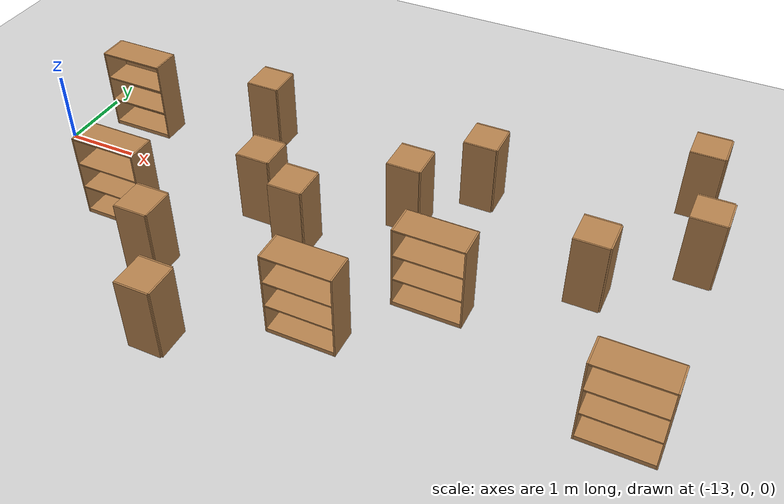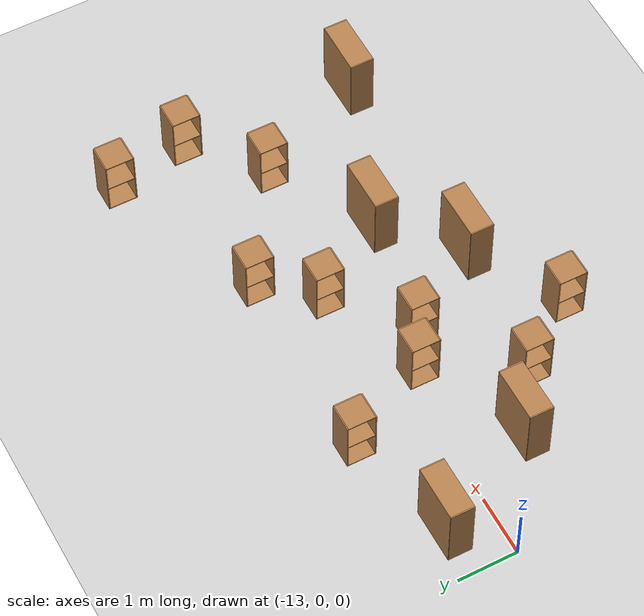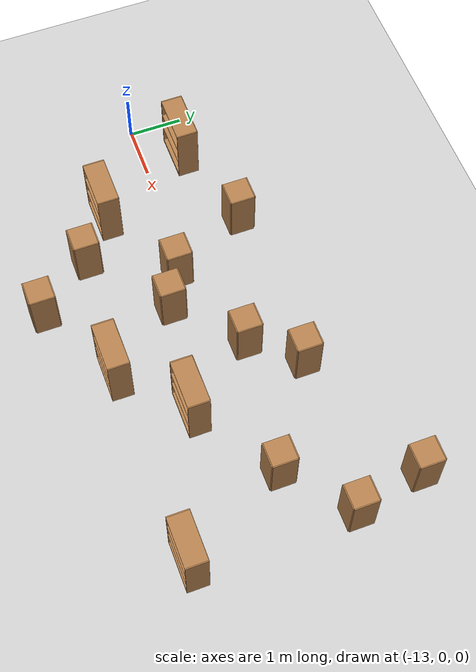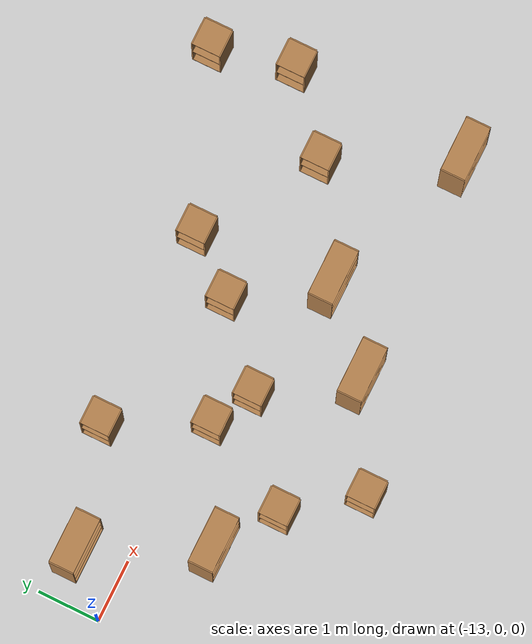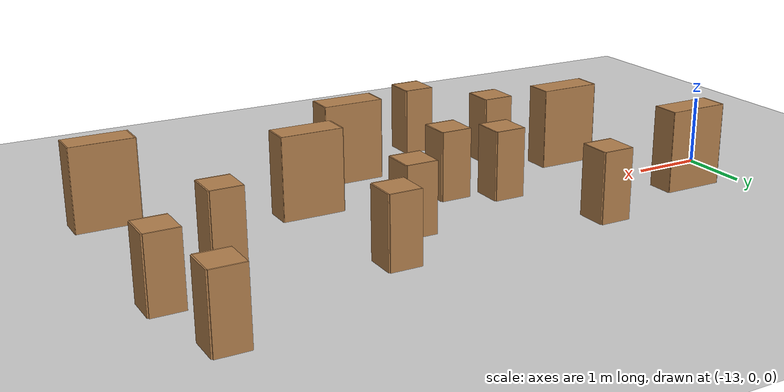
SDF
<sdf version="1.6">
 <world name="default">
  <model name="ground_plane">
   <static>1</static>
   <link name="link">
    <collision name="collision">
     <geometry><plane><normal>0 0 1</normal><size>100 100</size></plane></geometry>
     <surface><friction><ode><mu>100</mu><mu2>50</mu2></ode></friction></surface>
    </collision>
    <visual name="visual">
     <cast_shadows>0</cast_shadows>
     <geometry><plane><normal>0 0 1</normal><size>100 100</size></plane></geometry>
     <material>
      <script><uri>file://media/materials/scripts/gazebo.material</uri><name>Gazebo/Grey</name></script>
     </material>
    </visual>
   </link>
  </model>
  <model name="bookshelf_19">
   <static>1</static>
   <link name="link">
    <inertial><mass>1</mass></inertial>
    <collision name="back">
     <pose>0 0.005 0.6 0 -0 0</pose>
     <geometry><box><size>0.9 0.01 1.2</size></box></geometry>
    </collision>
    <visual name="visual1">
     <pose>0 0.005 0.6 0 -0 0</pose>
     <geometry><box><size>0.9 0.01 1.2</size></box></geometry>
     <material>
      <script><uri>file://media/materials/scripts/gazebo.material</uri><name>Gazebo/Wood</name></script>
     </material>
    </visual>
    <collision name="left_side">
     <pose>0.45 -0.195 0.6 0 -0 0</pose>
     <geometry><box><size>0.02 0.4 1.2</size></box></geometry>
    </collision>
    <visual name="visual2">
     <pose>0.45 -0.195 0.6 0 -0 0</pose>
     <geometry><box><size>0.02 0.4 1.2</size></box></geometry>
     <material>
      <script><uri>file://media/materials/scripts/gazebo.material</uri><name>Gazebo/Wood</name></script>
     </material>
    </visual>
    <collision name="right_side">
     <pose>-0.45 -0.195 0.6 0 -0 0</pose>
     <geometry><box><size>0.02 0.4 1.2</size></box></geometry>
    </collision>
    <visual name="visual3">
     <pose>-0.45 -0.195 0.6 0 -0 0</pose>
     <geometry><box><size>0.02 0.4 1.2</size></box></geometry>
     <material>
      <script><uri>file://media/materials/scripts/gazebo.material</uri><name>Gazebo/Wood</name></script>
     </material>
    </visual>
    <collision name="bottom">
     <pose>0 -0.195 0.03 0 -0 0</pose>
     <geometry><box><size>0.88 0.4 0.06</size></box></geometry>
    </collision>
    <visual name="visual4">
     <pose>0 -0.195 0.03 0 -0 0</pose>
     <geometry><box><size>0.88 0.4 0.06</size></box></geometry>
     <material>
      <script><uri>file://media/materials/scripts/gazebo.material</uri><name>Gazebo/Wood</name></script>
     </material>
    </visual>
    <collision name="top">
     <pose>0 -0.195 1.19 0 -0 0</pose>
     <geometry><box><size>0.88 0.4 0.02</size></box></geometry>
    </collision>
    <visual name="visual5">
     <pose>0 -0.195 1.19 0 -0 0</pose>
     <geometry><box><size>0.88 0.4 0.02</size></box></geometry>
     <material>
      <script><uri>file://media/materials/scripts/gazebo.material</uri><name>Gazebo/Wood</name></script>
     </material>
    </visual>
    <collision name="low_shelf">
     <pose>0 -0.195 0.43 0 -0 0</pose>
     <geometry><box><size>0.88 0.4 0.02</size></box></geometry>
    </collision>
    <visual name="visual6">
     <pose>0 -0.195 0.43 0 -0 0</pose>
     <geometry><box><size>0.88 0.4 0.02</size></box></geometry>
     <material>
      <script><uri>file://media/materials/scripts/gazebo.material</uri><name>Gazebo/Wood</name></script>
     </material>
    </visual>
    <collision name="high_shelf">
     <pose>0 -0.195 0.8 0 -0 0</pose>
     <geometry><box><size>0.88 0.4 0.02</size></box></geometry>
    </collision>
    <visual name="visual7">
     <pose>0 -0.195 0.8 0 -0 0</pose>
     <geometry><box><size>0.88 0.4 0.02</size></box></geometry>
     <material>
      <script><uri>file://media/materials/scripts/gazebo.material</uri><name>Gazebo/Wood</name></script>
     </material>
    </visual>
   </link>
   <pose>-12.18 0.947028 0 0 -0 0</pose>
  </model>
  <model name="bookshelf_20">
   <static>1</static>
   <link name="link">
    <inertial><mass>1</mass></inertial>
    <collision name="back">
     <pose>0 0.005 0.6 0 -0 0</pose>
     <geometry><box><size>0.9 0.01 1.2</size></box></geometry>
    </collision>
    <visual name="visual1">
     <pose>0 0.005 0.6 0 -0 0</pose>
     <geometry><box><size>0.9 0.01 1.2</size></box></geometry>
     <material>
      <script><uri>file://media/materials/scripts/gazebo.material</uri><name>Gazebo/Wood</name></script>
     </material>
    </visual>
    <collision name="left_side">
     <pose>0.45 -0.195 0.6 0 -0 0</pose>
     <geometry><box><size>0.02 0.4 1.2</size></box></geometry>
    </collision>
    <visual name="visual2">
     <pose>0.45 -0.195 0.6 0 -0 0</pose>
     <geometry><box><size>0.02 0.4 1.2</size></box></geometry>
     <material>
      <script><uri>file://media/materials/scripts/gazebo.material</uri><name>Gazebo/Wood</name></script>
     </material>
    </visual>
    <collision name="right_side">
     <pose>-0.45 -0.195 0.6 0 -0 0</pose>
     <geometry><box><size>0.02 0.4 1.2</size></box></geometry>
    </collision>
    <visual name="visual3">
     <pose>-0.45 -0.195 0.6 0 -0 0</pose>
     <geometry><box><size>0.02 0.4 1.2</size></box></geometry>
     <material>
      <script><uri>file://media/materials/scripts/gazebo.material</uri><name>Gazebo/Wood</name></script>
     </material>
    </visual>
    <collision name="bottom">
     <pose>0 -0.195 0.03 0 -0 0</pose>
     <geometry><box><size>0.88 0.4 0.06</size></box></geometry>
    </collision>
    <visual name="visual4">
     <pose>0 -0.195 0.03 0 -0 0</pose>
     <geometry><box><size>0.88 0.4 0.06</size></box></geometry>
     <material>
      <script><uri>file://media/materials/scripts/gazebo.material</uri><name>Gazebo/Wood</name></script>
     </material>
    </visual>
    <collision name="top">
     <pose>0 -0.195 1.19 0 -0 0</pose>
     <geometry><box><size>0.88 0.4 0.02</size></box></geometry>
    </collision>
    <visual name="visual5">
     <pose>0 -0.195 1.19 0 -0 0</pose>
     <geometry><box><size>0.88 0.4 0.02</size></box></geometry>
     <material>
      <script><uri>file://media/materials/scripts/gazebo.material</uri><name>Gazebo/Wood</name></script>
     </material>
    </visual>
    <collision name="low_shelf">
     <pose>0 -0.195 0.43 0 -0 0</pose>
     <geometry><box><size>0.88 0.4 0.02</size></box></geometry>
    </collision>
    <visual name="visual6">
     <pose>0 -0.195 0.43 0 -0 0</pose>
     <geometry><box><size>0.88 0.4 0.02</size></box></geometry>
     <material>
      <script><uri>file://media/materials/scripts/gazebo.material</uri><name>Gazebo/Wood</name></script>
     </material>
    </visual>
    <collision name="high_shelf">
     <pose>0 -0.195 0.8 0 -0 0</pose>
     <geometry><box><size>0.88 0.4 0.02</size></box></geometry>
    </collision>
    <visual name="visual7">
     <pose>0 -0.195 0.8 0 -0 0</pose>
     <geometry><box><size>0.88 0.4 0.02</size></box></geometry>
     <material>
      <script><uri>file://media/materials/scripts/gazebo.material</uri><name>Gazebo/Wood</name></script>
     </material>
    </visual>
   </link>
   <pose>-11.2678 -0.884884 0 0 -0 0</pose>
  </model>
  <model name="cabinet_9">
   <static>1</static>
   <link name="cabinet_bottom_plate">
    <inertial>
     <pose>0 0 -1 0 -0 0</pose>
     <inertia><ixx>2.05</ixx><ixy>0</ixy><ixz>0</ixz><iyy>2.05</iyy><iyz>0</iyz><izz>2.05</izz></inertia>
     <mass>25</mass>
    </inertial>
    <collision name="cabinet_bottom_plate_geom">
     <pose>0 0 0.01 0 -0 0</pose>
     <geometry><box><size>0.45 0.45 0.02</size></box></geometry>
    </collision>
    <visual name="cabinet_bottom_plate_geom_visual">
     <pose>0 0 0.01 0 -0 0</pose>
     <geometry><box><size>0.45 0.45 0.02</size></box></geometry>
     <material>
      <script><uri>file://media/materials/scripts/gazebo.material</uri><name>Gazebo/Wood</name></script>
     </material>
    </visual>
    <collision name="cabinet_bottom_plate_geom_cabinet_back_plate">
     <pose>0.235 0 0.51 0 -0 0</pose>
     <geometry><box><size>0.02 0.45 1.02</size></box></geometry>
    </collision>
    <visual name="cabinet_bottom_plate_geom_cabinet_back_plate_visual">
     <pose>0.235 0 0.51 0 -0 0</pose>
     <geometry><box><size>0.02 0.45 1.02</size></box></geometry>
     <material>
      <script><uri>file://media/materials/scripts/gazebo.material</uri><name>Gazebo/Wood</name></script>
     </material>
    </visual>
    <collision name="cabinet_bottom_plate_geom_cabinet_left_plate">
     <pose>0 0.235 0.51 0 -0 0</pose>
     <geometry><box><size>0.45 0.02 1.02</size></box></geometry>
    </collision>
    <visual name="cabinet_bottom_plate_geom_cabinet_left_plate_visual">
     <pose>0 0.235 0.51 0 -0 0</pose>
     <geometry><box><size>0.45 0.02 1.02</size></box></geometry>
     <material>
      <script><uri>file://media/materials/scripts/gazebo.material</uri><name>Gazebo/Wood</name></script>
     </material>
    </visual>
    <collision name="cabinet_bottom_plate_geom_cabinet_middle_plate">
     <pose>0 0 0.51 0 -0 0</pose>
     <geometry><box><size>0.45 0.45 0.02</size></box></geometry>
    </collision>
    <visual name="cabinet_bottom_plate_geom_cabinet_middle_plate_visual">
     <pose>0 0 0.51 0 -0 0</pose>
     <geometry><box><size>0.45 0.45 0.02</size></box></geometry>
     <material>
      <script><uri>file://media/materials/scripts/gazebo.material</uri><name>Gazebo/Wood</name></script>
     </material>
    </visual>
    <collision name="cabinet_bottom_plate_geom_cabinet_right_plate">
     <pose>0 -0.235 0.51 0 -0 0</pose>
     <geometry><box><size>0.45 0.02 1.02</size></box></geometry>
    </collision>
    <visual name="cabinet_bottom_plate_geom_cabinet_right_plate_visual">
     <pose>0 -0.235 0.51 0 -0 0</pose>
     <geometry><box><size>0.45 0.02 1.02</size></box></geometry>
     <material>
      <script><uri>file://media/materials/scripts/gazebo.material</uri><name>Gazebo/Wood</name></script>
     </material>
    </visual>
    <collision name="cabinet_bottom_plate_geom_cabinet_top_plate">
     <pose>0 0 1.01 0 -0 0</pose>
     <geometry><box><size>0.45 0.45 0.02</size></box></geometry>
    </collision>
    <visual name="cabinet_bottom_plate_geom_cabinet_top_plate_visual">
     <pose>0 0 1.01 0 -0 0</pose>
     <geometry><box><size>0.45 0.45 0.02</size></box></geometry>
     <material>
      <script><uri>file://media/materials/scripts/gazebo.material</uri><name>Gazebo/Wood</name></script>
     </material>
    </visual>
   </link>
   <pose>-9.57575 -2.77074 0 0 -0 0</pose>
  </model>
  <model name="cabinet_10">
   <static>1</static>
   <link name="cabinet_bottom_plate">
    <inertial>
     <pose>0 0 -1 0 -0 0</pose>
     <inertia><ixx>2.05</ixx><ixy>0</ixy><ixz>0</ixz><iyy>2.05</iyy><iyz>0</iyz><izz>2.05</izz></inertia>
     <mass>25</mass>
    </inertial>
    <collision name="cabinet_bottom_plate_geom">
     <pose>0 0 0.01 0 -0 0</pose>
     <geometry><box><size>0.45 0.45 0.02</size></box></geometry>
    </collision>
    <visual name="cabinet_bottom_plate_geom_visual">
     <pose>0 0 0.01 0 -0 0</pose>
     <geometry><box><size>0.45 0.45 0.02</size></box></geometry>
     <material>
      <script><uri>file://media/materials/scripts/gazebo.material</uri><name>Gazebo/Wood</name></script>
     </material>
    </visual>
    <collision name="cabinet_bottom_plate_geom_cabinet_back_plate">
     <pose>0.235 0 0.51 0 -0 0</pose>
     <geometry><box><size>0.02 0.45 1.02</size></box></geometry>
    </collision>
    <visual name="cabinet_bottom_plate_geom_cabinet_back_plate_visual">
     <pose>0.235 0 0.51 0 -0 0</pose>
     <geometry><box><size>0.02 0.45 1.02</size></box></geometry>
     <material>
      <script><uri>file://media/materials/scripts/gazebo.material</uri><name>Gazebo/Wood</name></script>
     </material>
    </visual>
    <collision name="cabinet_bottom_plate_geom_cabinet_left_plate">
     <pose>0 0.235 0.51 0 -0 0</pose>
     <geometry><box><size>0.45 0.02 1.02</size></box></geometry>
    </collision>
    <visual name="cabinet_bottom_plate_geom_cabinet_left_plate_visual">
     <pose>0 0.235 0.51 0 -0 0</pose>
     <geometry><box><size>0.45 0.02 1.02</size></box></geometry>
     <material>
      <script><uri>file://media/materials/scripts/gazebo.material</uri><name>Gazebo/Wood</name></script>
     </material>
    </visual>
    <collision name="cabinet_bottom_plate_geom_cabinet_middle_plate">
     <pose>0 0 0.51 0 -0 0</pose>
     <geometry><box><size>0.45 0.45 0.02</size></box></geometry>
    </collision>
    <visual name="cabinet_bottom_plate_geom_cabinet_middle_plate_visual">
     <pose>0 0 0.51 0 -0 0</pose>
     <geometry><box><size>0.45 0.45 0.02</size></box></geometry>
     <material>
      <script><uri>file://media/materials/scripts/gazebo.material</uri><name>Gazebo/Wood</name></script>
     </material>
    </visual>
    <collision name="cabinet_bottom_plate_geom_cabinet_right_plate">
     <pose>0 -0.235 0.51 0 -0 0</pose>
     <geometry><box><size>0.45 0.02 1.02</size></box></geometry>
    </collision>
    <visual name="cabinet_bottom_plate_geom_cabinet_right_plate_visual">
     <pose>0 -0.235 0.51 0 -0 0</pose>
     <geometry><box><size>0.45 0.02 1.02</size></box></geometry>
     <material>
      <script><uri>file://media/materials/scripts/gazebo.material</uri><name>Gazebo/Wood</name></script>
     </material>
    </visual>
    <collision name="cabinet_bottom_plate_geom_cabinet_top_plate">
     <pose>0 0 1.01 0 -0 0</pose>
     <geometry><box><size>0.45 0.45 0.02</size></box></geometry>
    </collision>
    <visual name="cabinet_bottom_plate_geom_cabinet_top_plate_visual">
     <pose>0 0 1.01 0 -0 0</pose>
     <geometry><box><size>0.45 0.45 0.02</size></box></geometry>
     <material>
      <script><uri>file://media/materials/scripts/gazebo.material</uri><name>Gazebo/Wood</name></script>
     </material>
    </visual>
   </link>
   <pose>-10.3756 -1.71932 0 0 -0 0</pose>
  </model>
  <model name="cabinet_11">
   <static>1</static>
   <link name="cabinet_bottom_plate">
    <inertial>
     <pose>0 0 -1 0 -0 0</pose>
     <inertia><ixx>2.05</ixx><ixy>0</ixy><ixz>0</ixz><iyy>2.05</iyy><iyz>0</iyz><izz>2.05</izz></inertia>
     <mass>25</mass>
    </inertial>
    <collision name="cabinet_bottom_plate_geom">
     <pose>0 0 0.01 0 -0 0</pose>
     <geometry><box><size>0.45 0.45 0.02</size></box></geometry>
    </collision>
    <visual name="cabinet_bottom_plate_geom_visual">
     <pose>0 0 0.01 0 -0 0</pose>
     <geometry><box><size>0.45 0.45 0.02</size></box></geometry>
     <material>
      <script><uri>file://media/materials/scripts/gazebo.material</uri><name>Gazebo/Wood</name></script>
     </material>
    </visual>
    <collision name="cabinet_bottom_plate_geom_cabinet_back_plate">
     <pose>0.235 0 0.51 0 -0 0</pose>
     <geometry><box><size>0.02 0.45 1.02</size></box></geometry>
    </collision>
    <visual name="cabinet_bottom_plate_geom_cabinet_back_plate_visual">
     <pose>0.235 0 0.51 0 -0 0</pose>
     <geometry><box><size>0.02 0.45 1.02</size></box></geometry>
     <material>
      <script><uri>file://media/materials/scripts/gazebo.material</uri><name>Gazebo/Wood</name></script>
     </material>
    </visual>
    <collision name="cabinet_bottom_plate_geom_cabinet_left_plate">
     <pose>0 0.235 0.51 0 -0 0</pose>
     <geometry><box><size>0.45 0.02 1.02</size></box></geometry>
    </collision>
    <visual name="cabinet_bottom_plate_geom_cabinet_left_plate_visual">
     <pose>0 0.235 0.51 0 -0 0</pose>
     <geometry><box><size>0.45 0.02 1.02</size></box></geometry>
     <material>
      <script><uri>file://media/materials/scripts/gazebo.material</uri><name>Gazebo/Wood</name></script>
     </material>
    </visual>
    <collision name="cabinet_bottom_plate_geom_cabinet_middle_plate">
     <pose>0 0 0.51 0 -0 0</pose>
     <geometry><box><size>0.45 0.45 0.02</size></box></geometry>
    </collision>
    <visual name="cabinet_bottom_plate_geom_cabinet_middle_plate_visual">
     <pose>0 0 0.51 0 -0 0</pose>
     <geometry><box><size>0.45 0.45 0.02</size></box></geometry>
     <material>
      <script><uri>file://media/materials/scripts/gazebo.material</uri><name>Gazebo/Wood</name></script>
     </material>
    </visual>
    <collision name="cabinet_bottom_plate_geom_cabinet_right_plate">
     <pose>0 -0.235 0.51 0 -0 0</pose>
     <geometry><box><size>0.45 0.02 1.02</size></box></geometry>
    </collision>
    <visual name="cabinet_bottom_plate_geom_cabinet_right_plate_visual">
     <pose>0 -0.235 0.51 0 -0 0</pose>
     <geometry><box><size>0.45 0.02 1.02</size></box></geometry>
     <material>
      <script><uri>file://media/materials/scripts/gazebo.material</uri><name>Gazebo/Wood</name></script>
     </material>
    </visual>
    <collision name="cabinet_bottom_plate_geom_cabinet_top_plate">
     <pose>0 0 1.01 0 -0 0</pose>
     <geometry><box><size>0.45 0.45 0.02</size></box></geometry>
    </collision>
    <visual name="cabinet_bottom_plate_geom_cabinet_top_plate_visual">
     <pose>0 0 1.01 0 -0 0</pose>
     <geometry><box><size>0.45 0.45 0.02</size></box></geometry>
     <material>
      <script><uri>file://media/materials/scripts/gazebo.material</uri><name>Gazebo/Wood</name></script>
     </material>
    </visual>
   </link>
   <pose>-9.60301 -0.227006 0 0 -0 0</pose>
  </model>
  <model name="cabinet_12">
   <static>1</static>
   <link name="cabinet_bottom_plate">
    <inertial>
     <pose>0 0 -1 0 -0 0</pose>
     <inertia><ixx>2.05</ixx><ixy>0</ixy><ixz>0</ixz><iyy>2.05</iyy><iyz>0</iyz><izz>2.05</izz></inertia>
     <mass>25</mass>
    </inertial>
    <collision name="cabinet_bottom_plate_geom">
     <pose>0 0 0.01 0 -0 0</pose>
     <geometry><box><size>0.45 0.45 0.02</size></box></geometry>
    </collision>
    <visual name="cabinet_bottom_plate_geom_visual">
     <pose>0 0 0.01 0 -0 0</pose>
     <geometry><box><size>0.45 0.45 0.02</size></box></geometry>
     <material>
      <script><uri>file://media/materials/scripts/gazebo.material</uri><name>Gazebo/Wood</name></script>
     </material>
    </visual>
    <collision name="cabinet_bottom_plate_geom_cabinet_back_plate">
     <pose>0.235 0 0.51 0 -0 0</pose>
     <geometry><box><size>0.02 0.45 1.02</size></box></geometry>
    </collision>
    <visual name="cabinet_bottom_plate_geom_cabinet_back_plate_visual">
     <pose>0.235 0 0.51 0 -0 0</pose>
     <geometry><box><size>0.02 0.45 1.02</size></box></geometry>
     <material>
      <script><uri>file://media/materials/scripts/gazebo.material</uri><name>Gazebo/Wood</name></script>
     </material>
    </visual>
    <collision name="cabinet_bottom_plate_geom_cabinet_left_plate">
     <pose>0 0.235 0.51 0 -0 0</pose>
     <geometry><box><size>0.45 0.02 1.02</size></box></geometry>
    </collision>
    <visual name="cabinet_bottom_plate_geom_cabinet_left_plate_visual">
     <pose>0 0.235 0.51 0 -0 0</pose>
     <geometry><box><size>0.45 0.02 1.02</size></box></geometry>
     <material>
      <script><uri>file://media/materials/scripts/gazebo.material</uri><name>Gazebo/Wood</name></script>
     </material>
    </visual>
    <collision name="cabinet_bottom_plate_geom_cabinet_middle_plate">
     <pose>0 0 0.51 0 -0 0</pose>
     <geometry><box><size>0.45 0.45 0.02</size></box></geometry>
    </collision>
    <visual name="cabinet_bottom_plate_geom_cabinet_middle_plate_visual">
     <pose>0 0 0.51 0 -0 0</pose>
     <geometry><box><size>0.45 0.45 0.02</size></box></geometry>
     <material>
      <script><uri>file://media/materials/scripts/gazebo.material</uri><name>Gazebo/Wood</name></script>
     </material>
    </visual>
    <collision name="cabinet_bottom_plate_geom_cabinet_right_plate">
     <pose>0 -0.235 0.51 0 -0 0</pose>
     <geometry><box><size>0.45 0.02 1.02</size></box></geometry>
    </collision>
    <visual name="cabinet_bottom_plate_geom_cabinet_right_plate_visual">
     <pose>0 -0.235 0.51 0 -0 0</pose>
     <geometry><box><size>0.45 0.02 1.02</size></box></geometry>
     <material>
      <script><uri>file://media/materials/scripts/gazebo.material</uri><name>Gazebo/Wood</name></script>
     </material>
    </visual>
    <collision name="cabinet_bottom_plate_geom_cabinet_top_plate">
     <pose>0 0 1.01 0 -0 0</pose>
     <geometry><box><size>0.45 0.45 0.02</size></box></geometry>
    </collision>
    <visual name="cabinet_bottom_plate_geom_cabinet_top_plate_visual">
     <pose>0 0 1.01 0 -0 0</pose>
     <geometry><box><size>0.45 0.45 0.02</size></box></geometry>
     <material>
      <script><uri>file://media/materials/scripts/gazebo.material</uri><name>Gazebo/Wood</name></script>
     </material>
    </visual>
   </link>
   <pose>-10.3341 1.24901 0 0 -0 0</pose>
  </model>
  <model name="bookshelf_24">
   <static>1</static>
   <link name="link">
    <inertial><mass>1</mass></inertial>
    <collision name="back">
     <pose>0 0.005 0.6 0 -0 0</pose>
     <geometry><box><size>0.9 0.01 1.2</size></box></geometry>
    </collision>
    <visual name="visual1">
     <pose>0 0.005 0.6 0 -0 0</pose>
     <geometry><box><size>0.9 0.01 1.2</size></box></geometry>
     <material>
      <script><uri>file://media/materials/scripts/gazebo.material</uri><name>Gazebo/Wood</name></script>
     </material>
    </visual>
    <collision name="left_side">
     <pose>0.45 -0.195 0.6 0 -0 0</pose>
     <geometry><box><size>0.02 0.4 1.2</size></box></geometry>
    </collision>
    <visual name="visual2">
     <pose>0.45 -0.195 0.6 0 -0 0</pose>
     <geometry><box><size>0.02 0.4 1.2</size></box></geometry>
     <material>
      <script><uri>file://media/materials/scripts/gazebo.material</uri><name>Gazebo/Wood</name></script>
     </material>
    </visual>
    <collision name="right_side">
     <pose>-0.45 -0.195 0.6 0 -0 0</pose>
     <geometry><box><size>0.02 0.4 1.2</size></box></geometry>
    </collision>
    <visual name="visual3">
     <pose>-0.45 -0.195 0.6 0 -0 0</pose>
     <geometry><box><size>0.02 0.4 1.2</size></box></geometry>
     <material>
      <script><uri>file://media/materials/scripts/gazebo.material</uri><name>Gazebo/Wood</name></script>
     </material>
    </visual>
    <collision name="bottom">
     <pose>0 -0.195 0.03 0 -0 0</pose>
     <geometry><box><size>0.88 0.4 0.06</size></box></geometry>
    </collision>
    <visual name="visual4">
     <pose>0 -0.195 0.03 0 -0 0</pose>
     <geometry><box><size>0.88 0.4 0.06</size></box></geometry>
     <material>
      <script><uri>file://media/materials/scripts/gazebo.material</uri><name>Gazebo/Wood</name></script>
     </material>
    </visual>
    <collision name="top">
     <pose>0 -0.195 1.19 0 -0 0</pose>
     <geometry><box><size>0.88 0.4 0.02</size></box></geometry>
    </collision>
    <visual name="visual5">
     <pose>0 -0.195 1.19 0 -0 0</pose>
     <geometry><box><size>0.88 0.4 0.02</size></box></geometry>
     <material>
      <script><uri>file://media/materials/scripts/gazebo.material</uri><name>Gazebo/Wood</name></script>
     </material>
    </visual>
    <collision name="low_shelf">
     <pose>0 -0.195 0.43 0 -0 0</pose>
     <geometry><box><size>0.88 0.4 0.02</size></box></geometry>
    </collision>
    <visual name="visual6">
     <pose>0 -0.195 0.43 0 -0 0</pose>
     <geometry><box><size>0.88 0.4 0.02</size></box></geometry>
     <material>
      <script><uri>file://media/materials/scripts/gazebo.material</uri><name>Gazebo/Wood</name></script>
     </material>
    </visual>
    <collision name="high_shelf">
     <pose>0 -0.195 0.8 0 -0 0</pose>
     <geometry><box><size>0.88 0.4 0.02</size></box></geometry>
    </collision>
    <visual name="visual7">
     <pose>0 -0.195 0.8 0 -0 0</pose>
     <geometry><box><size>0.88 0.4 0.02</size></box></geometry>
     <material>
      <script><uri>file://media/materials/scripts/gazebo.material</uri><name>Gazebo/Wood</name></script>
     </material>
    </visual>
   </link>
   <pose>-8.02454 -1.74312 0 0 -0 0</pose>
  </model>
  <model name="cabinet_17">
   <static>1</static>
   <link name="cabinet_bottom_plate">
    <inertial>
     <pose>0 0 -1 0 -0 0</pose>
     <inertia><ixx>2.05</ixx><ixy>0</ixy><ixz>0</ixz><iyy>2.05</iyy><iyz>0</iyz><izz>2.05</izz></inertia>
     <mass>25</mass>
    </inertial>
    <collision name="cabinet_bottom_plate_geom">
     <pose>0 0 0.01 0 -0 0</pose>
     <geometry><box><size>0.45 0.45 0.02</size></box></geometry>
    </collision>
    <visual name="cabinet_bottom_plate_geom_visual">
     <pose>0 0 0.01 0 -0 0</pose>
     <geometry><box><size>0.45 0.45 0.02</size></box></geometry>
     <material>
      <script><uri>file://media/materials/scripts/gazebo.material</uri><name>Gazebo/Wood</name></script>
     </material>
    </visual>
    <collision name="cabinet_bottom_plate_geom_cabinet_back_plate">
     <pose>0.235 0 0.51 0 -0 0</pose>
     <geometry><box><size>0.02 0.45 1.02</size></box></geometry>
    </collision>
    <visual name="cabinet_bottom_plate_geom_cabinet_back_plate_visual">
     <pose>0.235 0 0.51 0 -0 0</pose>
     <geometry><box><size>0.02 0.45 1.02</size></box></geometry>
     <material>
      <script><uri>file://media/materials/scripts/gazebo.material</uri><name>Gazebo/Wood</name></script>
     </material>
    </visual>
    <collision name="cabinet_bottom_plate_geom_cabinet_left_plate">
     <pose>0 0.235 0.51 0 -0 0</pose>
     <geometry><box><size>0.45 0.02 1.02</size></box></geometry>
    </collision>
    <visual name="cabinet_bottom_plate_geom_cabinet_left_plate_visual">
     <pose>0 0.235 0.51 0 -0 0</pose>
     <geometry><box><size>0.45 0.02 1.02</size></box></geometry>
     <material>
      <script><uri>file://media/materials/scripts/gazebo.material</uri><name>Gazebo/Wood</name></script>
     </material>
    </visual>
    <collision name="cabinet_bottom_plate_geom_cabinet_middle_plate">
     <pose>0 0 0.51 0 -0 0</pose>
     <geometry><box><size>0.45 0.45 0.02</size></box></geometry>
    </collision>
    <visual name="cabinet_bottom_plate_geom_cabinet_middle_plate_visual">
     <pose>0 0 0.51 0 -0 0</pose>
     <geometry><box><size>0.45 0.45 0.02</size></box></geometry>
     <material>
      <script><uri>file://media/materials/scripts/gazebo.material</uri><name>Gazebo/Wood</name></script>
     </material>
    </visual>
    <collision name="cabinet_bottom_plate_geom_cabinet_right_plate">
     <pose>0 -0.235 0.51 0 -0 0</pose>
     <geometry><box><size>0.45 0.02 1.02</size></box></geometry>
    </collision>
    <visual name="cabinet_bottom_plate_geom_cabinet_right_plate_visual">
     <pose>0 -0.235 0.51 0 -0 0</pose>
     <geometry><box><size>0.45 0.02 1.02</size></box></geometry>
     <material>
      <script><uri>file://media/materials/scripts/gazebo.material</uri><name>Gazebo/Wood</name></script>
     </material>
    </visual>
    <collision name="cabinet_bottom_plate_geom_cabinet_top_plate">
     <pose>0 0 1.01 0 -0 0</pose>
     <geometry><box><size>0.45 0.45 0.02</size></box></geometry>
    </collision>
    <visual name="cabinet_bottom_plate_geom_cabinet_top_plate_visual">
     <pose>0 0 1.01 0 -0 0</pose>
     <geometry><box><size>0.45 0.45 0.02</size></box></geometry>
     <material>
      <script><uri>file://media/materials/scripts/gazebo.material</uri><name>Gazebo/Wood</name></script>
     </material>
    </visual>
   </link>
   <pose>-8.93436 -0.583523 0 0 -0 0</pose>
  </model>
  <model name="cabinet_18">
   <static>1</static>
   <link name="cabinet_bottom_plate">
    <inertial>
     <pose>0 0 -1 0 -0 0</pose>
     <inertia><ixx>2.05</ixx><ixy>0</ixy><ixz>0</ixz><iyy>2.05</iyy><iyz>0</iyz><izz>2.05</izz></inertia>
     <mass>25</mass>
    </inertial>
    <collision name="cabinet_bottom_plate_geom">
     <pose>0 0 0.01 0 -0 0</pose>
     <geometry><box><size>0.45 0.45 0.02</size></box></geometry>
    </collision>
    <visual name="cabinet_bottom_plate_geom_visual">
     <pose>0 0 0.01 0 -0 0</pose>
     <geometry><box><size>0.45 0.45 0.02</size></box></geometry>
     <material>
      <script><uri>file://media/materials/scripts/gazebo.material</uri><name>Gazebo/Wood</name></script>
     </material>
    </visual>
    <collision name="cabinet_bottom_plate_geom_cabinet_back_plate">
     <pose>0.235 0 0.51 0 -0 0</pose>
     <geometry><box><size>0.02 0.45 1.02</size></box></geometry>
    </collision>
    <visual name="cabinet_bottom_plate_geom_cabinet_back_plate_visual">
     <pose>0.235 0 0.51 0 -0 0</pose>
     <geometry><box><size>0.02 0.45 1.02</size></box></geometry>
     <material>
      <script><uri>file://media/materials/scripts/gazebo.material</uri><name>Gazebo/Wood</name></script>
     </material>
    </visual>
    <collision name="cabinet_bottom_plate_geom_cabinet_left_plate">
     <pose>0 0.235 0.51 0 -0 0</pose>
     <geometry><box><size>0.45 0.02 1.02</size></box></geometry>
    </collision>
    <visual name="cabinet_bottom_plate_geom_cabinet_left_plate_visual">
     <pose>0 0.235 0.51 0 -0 0</pose>
     <geometry><box><size>0.45 0.02 1.02</size></box></geometry>
     <material>
      <script><uri>file://media/materials/scripts/gazebo.material</uri><name>Gazebo/Wood</name></script>
     </material>
    </visual>
    <collision name="cabinet_bottom_plate_geom_cabinet_middle_plate">
     <pose>0 0 0.51 0 -0 0</pose>
     <geometry><box><size>0.45 0.45 0.02</size></box></geometry>
    </collision>
    <visual name="cabinet_bottom_plate_geom_cabinet_middle_plate_visual">
     <pose>0 0 0.51 0 -0 0</pose>
     <geometry><box><size>0.45 0.45 0.02</size></box></geometry>
     <material>
      <script><uri>file://media/materials/scripts/gazebo.material</uri><name>Gazebo/Wood</name></script>
     </material>
    </visual>
    <collision name="cabinet_bottom_plate_geom_cabinet_right_plate">
     <pose>0 -0.235 0.51 0 -0 0</pose>
     <geometry><box><size>0.45 0.02 1.02</size></box></geometry>
    </collision>
    <visual name="cabinet_bottom_plate_geom_cabinet_right_plate_visual">
     <pose>0 -0.235 0.51 0 -0 0</pose>
     <geometry><box><size>0.45 0.02 1.02</size></box></geometry>
     <material>
      <script><uri>file://media/materials/scripts/gazebo.material</uri><name>Gazebo/Wood</name></script>
     </material>
    </visual>
    <collision name="cabinet_bottom_plate_geom_cabinet_top_plate">
     <pose>0 0 1.01 0 -0 0</pose>
     <geometry><box><size>0.45 0.45 0.02</size></box></geometry>
    </collision>
    <visual name="cabinet_bottom_plate_geom_cabinet_top_plate_visual">
     <pose>0 0 1.01 0 -0 0</pose>
     <geometry><box><size>0.45 0.45 0.02</size></box></geometry>
     <material>
      <script><uri>file://media/materials/scripts/gazebo.material</uri><name>Gazebo/Wood</name></script>
     </material>
    </visual>
   </link>
   <pose>-7.80378 0.422882 0 0 -0 0</pose>
  </model>
  <model name="bookshelf_28">
   <static>1</static>
   <link name="link">
    <inertial><mass>1</mass></inertial>
    <collision name="back">
     <pose>0 0.005 0.6 0 -0 0</pose>
     <geometry><box><size>0.9 0.01 1.2</size></box></geometry>
    </collision>
    <visual name="visual1">
     <pose>0 0.005 0.6 0 -0 0</pose>
     <geometry><box><size>0.9 0.01 1.2</size></box></geometry>
     <material>
      <script><uri>file://media/materials/scripts/gazebo.material</uri><name>Gazebo/Wood</name></script>
     </material>
    </visual>
    <collision name="left_side">
     <pose>0.45 -0.195 0.6 0 -0 0</pose>
     <geometry><box><size>0.02 0.4 1.2</size></box></geometry>
    </collision>
    <visual name="visual2">
     <pose>0.45 -0.195 0.6 0 -0 0</pose>
     <geometry><box><size>0.02 0.4 1.2</size></box></geometry>
     <material>
      <script><uri>file://media/materials/scripts/gazebo.material</uri><name>Gazebo/Wood</name></script>
     </material>
    </visual>
    <collision name="right_side">
     <pose>-0.45 -0.195 0.6 0 -0 0</pose>
     <geometry><box><size>0.02 0.4 1.2</size></box></geometry>
    </collision>
    <visual name="visual3">
     <pose>-0.45 -0.195 0.6 0 -0 0</pose>
     <geometry><box><size>0.02 0.4 1.2</size></box></geometry>
     <material>
      <script><uri>file://media/materials/scripts/gazebo.material</uri><name>Gazebo/Wood</name></script>
     </material>
    </visual>
    <collision name="bottom">
     <pose>0 -0.195 0.03 0 -0 0</pose>
     <geometry><box><size>0.88 0.4 0.06</size></box></geometry>
    </collision>
    <visual name="visual4">
     <pose>0 -0.195 0.03 0 -0 0</pose>
     <geometry><box><size>0.88 0.4 0.06</size></box></geometry>
     <material>
      <script><uri>file://media/materials/scripts/gazebo.material</uri><name>Gazebo/Wood</name></script>
     </material>
    </visual>
    <collision name="top">
     <pose>0 -0.195 1.19 0 -0 0</pose>
     <geometry><box><size>0.88 0.4 0.02</size></box></geometry>
    </collision>
    <visual name="visual5">
     <pose>0 -0.195 1.19 0 -0 0</pose>
     <geometry><box><size>0.88 0.4 0.02</size></box></geometry>
     <material>
      <script><uri>file://media/materials/scripts/gazebo.material</uri><name>Gazebo/Wood</name></script>
     </material>
    </visual>
    <collision name="low_shelf">
     <pose>0 -0.195 0.43 0 -0 0</pose>
     <geometry><box><size>0.88 0.4 0.02</size></box></geometry>
    </collision>
    <visual name="visual6">
     <pose>0 -0.195 0.43 0 -0 0</pose>
     <geometry><box><size>0.88 0.4 0.02</size></box></geometry>
     <material>
      <script><uri>file://media/materials/scripts/gazebo.material</uri><name>Gazebo/Wood</name></script>
     </material>
    </visual>
    <collision name="high_shelf">
     <pose>0 -0.195 0.8 0 -0 0</pose>
     <geometry><box><size>0.88 0.4 0.02</size></box></geometry>
    </collision>
    <visual name="visual7">
     <pose>0 -0.195 0.8 0 -0 0</pose>
     <geometry><box><size>0.88 0.4 0.02</size></box></geometry>
     <material>
      <script><uri>file://media/materials/scripts/gazebo.material</uri><name>Gazebo/Wood</name></script>
     </material>
    </visual>
   </link>
   <pose>-6.89441 -0.716947 0 0 -0 0</pose>
  </model>
  <model name="cabinet_21">
   <static>1</static>
   <link name="cabinet_bottom_plate">
    <inertial>
     <pose>0 0 -1 0 -0 0</pose>
     <inertia><ixx>2.05</ixx><ixy>0</ixy><ixz>0</ixz><iyy>2.05</iyy><iyz>0</iyz><izz>2.05</izz></inertia>
     <mass>25</mass>
    </inertial>
    <collision name="cabinet_bottom_plate_geom">
     <pose>0 0 0.01 0 -0 0</pose>
     <geometry><box><size>0.45 0.45 0.02</size></box></geometry>
    </collision>
    <visual name="cabinet_bottom_plate_geom_visual">
     <pose>0 0 0.01 0 -0 0</pose>
     <geometry><box><size>0.45 0.45 0.02</size></box></geometry>
     <material>
      <script><uri>file://media/materials/scripts/gazebo.material</uri><name>Gazebo/Wood</name></script>
     </material>
    </visual>
    <collision name="cabinet_bottom_plate_geom_cabinet_back_plate">
     <pose>0.235 0 0.51 0 -0 0</pose>
     <geometry><box><size>0.02 0.45 1.02</size></box></geometry>
    </collision>
    <visual name="cabinet_bottom_plate_geom_cabinet_back_plate_visual">
     <pose>0.235 0 0.51 0 -0 0</pose>
     <geometry><box><size>0.02 0.45 1.02</size></box></geometry>
     <material>
      <script><uri>file://media/materials/scripts/gazebo.material</uri><name>Gazebo/Wood</name></script>
     </material>
    </visual>
    <collision name="cabinet_bottom_plate_geom_cabinet_left_plate">
     <pose>0 0.235 0.51 0 -0 0</pose>
     <geometry><box><size>0.45 0.02 1.02</size></box></geometry>
    </collision>
    <visual name="cabinet_bottom_plate_geom_cabinet_left_plate_visual">
     <pose>0 0.235 0.51 0 -0 0</pose>
     <geometry><box><size>0.45 0.02 1.02</size></box></geometry>
     <material>
      <script><uri>file://media/materials/scripts/gazebo.material</uri><name>Gazebo/Wood</name></script>
     </material>
    </visual>
    <collision name="cabinet_bottom_plate_geom_cabinet_middle_plate">
     <pose>0 0 0.51 0 -0 0</pose>
     <geometry><box><size>0.45 0.45 0.02</size></box></geometry>
    </collision>
    <visual name="cabinet_bottom_plate_geom_cabinet_middle_plate_visual">
     <pose>0 0 0.51 0 -0 0</pose>
     <geometry><box><size>0.45 0.45 0.02</size></box></geometry>
     <material>
      <script><uri>file://media/materials/scripts/gazebo.material</uri><name>Gazebo/Wood</name></script>
     </material>
    </visual>
    <collision name="cabinet_bottom_plate_geom_cabinet_right_plate">
     <pose>0 -0.235 0.51 0 -0 0</pose>
     <geometry><box><size>0.45 0.02 1.02</size></box></geometry>
    </collision>
    <visual name="cabinet_bottom_plate_geom_cabinet_right_plate_visual">
     <pose>0 -0.235 0.51 0 -0 0</pose>
     <geometry><box><size>0.45 0.02 1.02</size></box></geometry>
     <material>
      <script><uri>file://media/materials/scripts/gazebo.material</uri><name>Gazebo/Wood</name></script>
     </material>
    </visual>
    <collision name="cabinet_bottom_plate_geom_cabinet_top_plate">
     <pose>0 0 1.01 0 -0 0</pose>
     <geometry><box><size>0.45 0.45 0.02</size></box></geometry>
    </collision>
    <visual name="cabinet_bottom_plate_geom_cabinet_top_plate_visual">
     <pose>0 0 1.01 0 -0 0</pose>
     <geometry><box><size>0.45 0.45 0.02</size></box></geometry>
     <material>
      <script><uri>file://media/materials/scripts/gazebo.material</uri><name>Gazebo/Wood</name></script>
     </material>
    </visual>
   </link>
   <pose>-7.10165 1.25625 0 0 -0 0</pose>
  </model>
  <model name="bookshelf_32">
   <static>1</static>
   <link name="link">
    <inertial><mass>1</mass></inertial>
    <collision name="back">
     <pose>0 0.005 0.6 0 -0 0</pose>
     <geometry><box><size>0.9 0.01 1.2</size></box></geometry>
    </collision>
    <visual name="visual1">
     <pose>0 0.005 0.6 0 -0 0</pose>
     <geometry><box><size>0.9 0.01 1.2</size></box></geometry>
     <material>
      <script><uri>file://media/materials/scripts/gazebo.material</uri><name>Gazebo/Wood</name></script>
     </material>
    </visual>
    <collision name="left_side">
     <pose>0.45 -0.195 0.6 0 -0 0</pose>
     <geometry><box><size>0.02 0.4 1.2</size></box></geometry>
    </collision>
    <visual name="visual2">
     <pose>0.45 -0.195 0.6 0 -0 0</pose>
     <geometry><box><size>0.02 0.4 1.2</size></box></geometry>
     <material>
      <script><uri>file://media/materials/scripts/gazebo.material</uri><name>Gazebo/Wood</name></script>
     </material>
    </visual>
    <collision name="right_side">
     <pose>-0.45 -0.195 0.6 0 -0 0</pose>
     <geometry><box><size>0.02 0.4 1.2</size></box></geometry>
    </collision>
    <visual name="visual3">
     <pose>-0.45 -0.195 0.6 0 -0 0</pose>
     <geometry><box><size>0.02 0.4 1.2</size></box></geometry>
     <material>
      <script><uri>file://media/materials/scripts/gazebo.material</uri><name>Gazebo/Wood</name></script>
     </material>
    </visual>
    <collision name="bottom">
     <pose>0 -0.195 0.03 0 -0 0</pose>
     <geometry><box><size>0.88 0.4 0.06</size></box></geometry>
    </collision>
    <visual name="visual4">
     <pose>0 -0.195 0.03 0 -0 0</pose>
     <geometry><box><size>0.88 0.4 0.06</size></box></geometry>
     <material>
      <script><uri>file://media/materials/scripts/gazebo.material</uri><name>Gazebo/Wood</name></script>
     </material>
    </visual>
    <collision name="top">
     <pose>0 -0.195 1.19 0 -0 0</pose>
     <geometry><box><size>0.88 0.4 0.02</size></box></geometry>
    </collision>
    <visual name="visual5">
     <pose>0 -0.195 1.19 0 -0 0</pose>
     <geometry><box><size>0.88 0.4 0.02</size></box></geometry>
     <material>
      <script><uri>file://media/materials/scripts/gazebo.material</uri><name>Gazebo/Wood</name></script>
     </material>
    </visual>
    <collision name="low_shelf">
     <pose>0 -0.195 0.43 0 -0 0</pose>
     <geometry><box><size>0.88 0.4 0.02</size></box></geometry>
    </collision>
    <visual name="visual6">
     <pose>0 -0.195 0.43 0 -0 0</pose>
     <geometry><box><size>0.88 0.4 0.02</size></box></geometry>
     <material>
      <script><uri>file://media/materials/scripts/gazebo.material</uri><name>Gazebo/Wood</name></script>
     </material>
    </visual>
    <collision name="high_shelf">
     <pose>0 -0.195 0.8 0 -0 0</pose>
     <geometry><box><size>0.88 0.4 0.02</size></box></geometry>
    </collision>
    <visual name="visual7">
     <pose>0 -0.195 0.8 0 -0 0</pose>
     <geometry><box><size>0.88 0.4 0.02</size></box></geometry>
     <material>
      <script><uri>file://media/materials/scripts/gazebo.material</uri><name>Gazebo/Wood</name></script>
     </material>
    </visual>
   </link>
   <pose>-4.33631 -1.67224 0 0 -0 0</pose>
  </model>
  <model name="cabinet_25">
   <static>1</static>
   <link name="cabinet_bottom_plate">
    <inertial>
     <pose>0 0 -1 0 -0 0</pose>
     <inertia><ixx>2.05</ixx><ixy>0</ixy><ixz>0</ixz><iyy>2.05</iyy><iyz>0</iyz><izz>2.05</izz></inertia>
     <mass>25</mass>
    </inertial>
    <collision name="cabinet_bottom_plate_geom">
     <pose>0 0 0.01 0 -0 0</pose>
     <geometry><box><size>0.45 0.45 0.02</size></box></geometry>
    </collision>
    <visual name="cabinet_bottom_plate_geom_visual">
     <pose>0 0 0.01 0 -0 0</pose>
     <geometry><box><size>0.45 0.45 0.02</size></box></geometry>
     <material>
      <script><uri>file://media/materials/scripts/gazebo.material</uri><name>Gazebo/Wood</name></script>
     </material>
    </visual>
    <collision name="cabinet_bottom_plate_geom_cabinet_back_plate">
     <pose>0.235 0 0.51 0 -0 0</pose>
     <geometry><box><size>0.02 0.45 1.02</size></box></geometry>
    </collision>
    <visual name="cabinet_bottom_plate_geom_cabinet_back_plate_visual">
     <pose>0.235 0 0.51 0 -0 0</pose>
     <geometry><box><size>0.02 0.45 1.02</size></box></geometry>
     <material>
      <script><uri>file://media/materials/scripts/gazebo.material</uri><name>Gazebo/Wood</name></script>
     </material>
    </visual>
    <collision name="cabinet_bottom_plate_geom_cabinet_left_plate">
     <pose>0 0.235 0.51 0 -0 0</pose>
     <geometry><box><size>0.45 0.02 1.02</size></box></geometry>
    </collision>
    <visual name="cabinet_bottom_plate_geom_cabinet_left_plate_visual">
     <pose>0 0.235 0.51 0 -0 0</pose>
     <geometry><box><size>0.45 0.02 1.02</size></box></geometry>
     <material>
      <script><uri>file://media/materials/scripts/gazebo.material</uri><name>Gazebo/Wood</name></script>
     </material>
    </visual>
    <collision name="cabinet_bottom_plate_geom_cabinet_middle_plate">
     <pose>0 0 0.51 0 -0 0</pose>
     <geometry><box><size>0.45 0.45 0.02</size></box></geometry>
    </collision>
    <visual name="cabinet_bottom_plate_geom_cabinet_middle_plate_visual">
     <pose>0 0 0.51 0 -0 0</pose>
     <geometry><box><size>0.45 0.45 0.02</size></box></geometry>
     <material>
      <script><uri>file://media/materials/scripts/gazebo.material</uri><name>Gazebo/Wood</name></script>
     </material>
    </visual>
    <collision name="cabinet_bottom_plate_geom_cabinet_right_plate">
     <pose>0 -0.235 0.51 0 -0 0</pose>
     <geometry><box><size>0.45 0.02 1.02</size></box></geometry>
    </collision>
    <visual name="cabinet_bottom_plate_geom_cabinet_right_plate_visual">
     <pose>0 -0.235 0.51 0 -0 0</pose>
     <geometry><box><size>0.45 0.02 1.02</size></box></geometry>
     <material>
      <script><uri>file://media/materials/scripts/gazebo.material</uri><name>Gazebo/Wood</name></script>
     </material>
    </visual>
    <collision name="cabinet_bottom_plate_geom_cabinet_top_plate">
     <pose>0 0 1.01 0 -0 0</pose>
     <geometry><box><size>0.45 0.45 0.02</size></box></geometry>
    </collision>
    <visual name="cabinet_bottom_plate_geom_cabinet_top_plate_visual">
     <pose>0 0 1.01 0 -0 0</pose>
     <geometry><box><size>0.45 0.45 0.02</size></box></geometry>
     <material>
      <script><uri>file://media/materials/scripts/gazebo.material</uri><name>Gazebo/Wood</name></script>
     </material>
    </visual>
   </link>
   <pose>-5.28225 0.074442 0 0 -0 0</pose>
  </model>
  <model name="cabinet_26">
   <static>1</static>
   <link name="cabinet_bottom_plate">
    <inertial>
     <pose>0 0 -1 0 -0 0</pose>
     <inertia><ixx>2.05</ixx><ixy>0</ixy><ixz>0</ixz><iyy>2.05</iyy><iyz>0</iyz><izz>2.05</izz></inertia>
     <mass>25</mass>
    </inertial>
    <collision name="cabinet_bottom_plate_geom">
     <pose>0 0 0.01 0 -0 0</pose>
     <geometry><box><size>0.45 0.45 0.02</size></box></geometry>
    </collision>
    <visual name="cabinet_bottom_plate_geom_visual">
     <pose>0 0 0.01 0 -0 0</pose>
     <geometry><box><size>0.45 0.45 0.02</size></box></geometry>
     <material>
      <script><uri>file://media/materials/scripts/gazebo.material</uri><name>Gazebo/Wood</name></script>
     </material>
    </visual>
    <collision name="cabinet_bottom_plate_geom_cabinet_back_plate">
     <pose>0.235 0 0.51 0 -0 0</pose>
     <geometry><box><size>0.02 0.45 1.02</size></box></geometry>
    </collision>
    <visual name="cabinet_bottom_plate_geom_cabinet_back_plate_visual">
     <pose>0.235 0 0.51 0 -0 0</pose>
     <geometry><box><size>0.02 0.45 1.02</size></box></geometry>
     <material>
      <script><uri>file://media/materials/scripts/gazebo.material</uri><name>Gazebo/Wood</name></script>
     </material>
    </visual>
    <collision name="cabinet_bottom_plate_geom_cabinet_left_plate">
     <pose>0 0.235 0.51 0 -0 0</pose>
     <geometry><box><size>0.45 0.02 1.02</size></box></geometry>
    </collision>
    <visual name="cabinet_bottom_plate_geom_cabinet_left_plate_visual">
     <pose>0 0.235 0.51 0 -0 0</pose>
     <geometry><box><size>0.45 0.02 1.02</size></box></geometry>
     <material>
      <script><uri>file://media/materials/scripts/gazebo.material</uri><name>Gazebo/Wood</name></script>
     </material>
    </visual>
    <collision name="cabinet_bottom_plate_geom_cabinet_middle_plate">
     <pose>0 0 0.51 0 -0 0</pose>
     <geometry><box><size>0.45 0.45 0.02</size></box></geometry>
    </collision>
    <visual name="cabinet_bottom_plate_geom_cabinet_middle_plate_visual">
     <pose>0 0 0.51 0 -0 0</pose>
     <geometry><box><size>0.45 0.45 0.02</size></box></geometry>
     <material>
      <script><uri>file://media/materials/scripts/gazebo.material</uri><name>Gazebo/Wood</name></script>
     </material>
    </visual>
    <collision name="cabinet_bottom_plate_geom_cabinet_right_plate">
     <pose>0 -0.235 0.51 0 -0 0</pose>
     <geometry><box><size>0.45 0.02 1.02</size></box></geometry>
    </collision>
    <visual name="cabinet_bottom_plate_geom_cabinet_right_plate_visual">
     <pose>0 -0.235 0.51 0 -0 0</pose>
     <geometry><box><size>0.45 0.02 1.02</size></box></geometry>
     <material>
      <script><uri>file://media/materials/scripts/gazebo.material</uri><name>Gazebo/Wood</name></script>
     </material>
    </visual>
    <collision name="cabinet_bottom_plate_geom_cabinet_top_plate">
     <pose>0 0 1.01 0 -0 0</pose>
     <geometry><box><size>0.45 0.45 0.02</size></box></geometry>
    </collision>
    <visual name="cabinet_bottom_plate_geom_cabinet_top_plate_visual">
     <pose>0 0 1.01 0 -0 0</pose>
     <geometry><box><size>0.45 0.45 0.02</size></box></geometry>
     <material>
      <script><uri>file://media/materials/scripts/gazebo.material</uri><name>Gazebo/Wood</name></script>
     </material>
    </visual>
   </link>
   <pose>-4.1589 1.02808 0 0 -0 0</pose>
  </model>
  <model name="cabinet_27">
   <static>1</static>
   <link name="cabinet_bottom_plate">
    <inertial>
     <pose>0 0 -1 0 -0 0</pose>
     <inertia><ixx>2.05</ixx><ixy>0</ixy><ixz>0</ixz><iyy>2.05</iyy><iyz>0</iyz><izz>2.05</izz></inertia>
     <mass>25</mass>
    </inertial>
    <collision name="cabinet_bottom_plate_geom">
     <pose>0 0 0.01 0 -0 0</pose>
     <geometry><box><size>0.45 0.45 0.02</size></box></geometry>
    </collision>
    <visual name="cabinet_bottom_plate_geom_visual">
     <pose>0 0 0.01 0 -0 0</pose>
     <geometry><box><size>0.45 0.45 0.02</size></box></geometry>
     <material>
      <script><uri>file://media/materials/scripts/gazebo.material</uri><name>Gazebo/Wood</name></script>
     </material>
    </visual>
    <collision name="cabinet_bottom_plate_geom_cabinet_back_plate">
     <pose>0.235 0 0.51 0 -0 0</pose>
     <geometry><box><size>0.02 0.45 1.02</size></box></geometry>
    </collision>
    <visual name="cabinet_bottom_plate_geom_cabinet_back_plate_visual">
     <pose>0.235 0 0.51 0 -0 0</pose>
     <geometry><box><size>0.02 0.45 1.02</size></box></geometry>
     <material>
      <script><uri>file://media/materials/scripts/gazebo.material</uri><name>Gazebo/Wood</name></script>
     </material>
    </visual>
    <collision name="cabinet_bottom_plate_geom_cabinet_left_plate">
     <pose>0 0.235 0.51 0 -0 0</pose>
     <geometry><box><size>0.45 0.02 1.02</size></box></geometry>
    </collision>
    <visual name="cabinet_bottom_plate_geom_cabinet_left_plate_visual">
     <pose>0 0.235 0.51 0 -0 0</pose>
     <geometry><box><size>0.45 0.02 1.02</size></box></geometry>
     <material>
      <script><uri>file://media/materials/scripts/gazebo.material</uri><name>Gazebo/Wood</name></script>
     </material>
    </visual>
    <collision name="cabinet_bottom_plate_geom_cabinet_middle_plate">
     <pose>0 0 0.51 0 -0 0</pose>
     <geometry><box><size>0.45 0.45 0.02</size></box></geometry>
    </collision>
    <visual name="cabinet_bottom_plate_geom_cabinet_middle_plate_visual">
     <pose>0 0 0.51 0 -0 0</pose>
     <geometry><box><size>0.45 0.45 0.02</size></box></geometry>
     <material>
      <script><uri>file://media/materials/scripts/gazebo.material</uri><name>Gazebo/Wood</name></script>
     </material>
    </visual>
    <collision name="cabinet_bottom_plate_geom_cabinet_right_plate">
     <pose>0 -0.235 0.51 0 -0 0</pose>
     <geometry><box><size>0.45 0.02 1.02</size></box></geometry>
    </collision>
    <visual name="cabinet_bottom_plate_geom_cabinet_right_plate_visual">
     <pose>0 -0.235 0.51 0 -0 0</pose>
     <geometry><box><size>0.45 0.02 1.02</size></box></geometry>
     <material>
      <script><uri>file://media/materials/scripts/gazebo.material</uri><name>Gazebo/Wood</name></script>
     </material>
    </visual>
    <collision name="cabinet_bottom_plate_geom_cabinet_top_plate">
     <pose>0 0 1.01 0 -0 0</pose>
     <geometry><box><size>0.45 0.45 0.02</size></box></geometry>
    </collision>
    <visual name="cabinet_bottom_plate_geom_cabinet_top_plate_visual">
     <pose>0 0 1.01 0 -0 0</pose>
     <geometry><box><size>0.45 0.45 0.02</size></box></geometry>
     <material>
      <script><uri>file://media/materials/scripts/gazebo.material</uri><name>Gazebo/Wood</name></script>
     </material>
    </visual>
   </link>
   <pose>-4.43215 2.3101 0 0 -0 0</pose>
  </model>
 </world>
</sdf>
